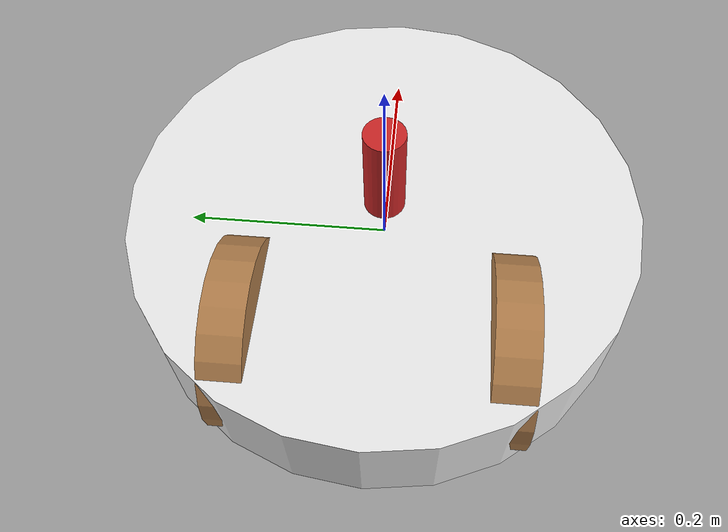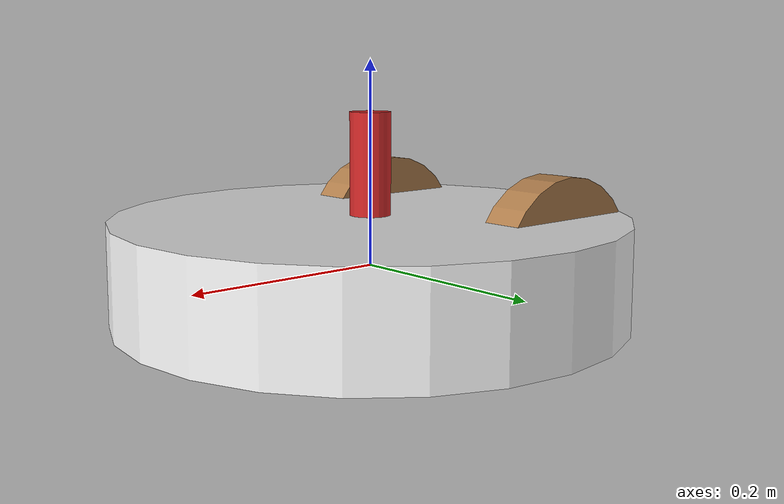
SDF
<?xml version='1.0'?>
<sdf version='1.7'>
    <model name='logger1'>
        <link name='logger-chassis'>
            <inertial>
                <pose>0.005952 0 -0.002381 0 -0 0</pose>
                <mass>2.1</mass>
                <inertia>
                    <ixx>0.0332188</ixx>
                    <ixy>0</ixy>
                    <ixz>0.000595238</ixz>
                    <iyy>0.0347069</iyy>
                    <iyz>0</iyz>
                    <izz>0.0640521</izz>
                </inertia>
            </inertial>
            <self_collide>0</self_collide>
            <enable_wind>0</enable_wind>
            <kinematic>0</kinematic>
            <pose>0 0 0 0 -0 0</pose>
            <visual name='logger-chassis_fixed_joint_lump__logger-caster_visual_1'>
                <pose>0.125 0 -0.05 0 -0 0</pose>
                <geometry>
                    <sphere>
                        <radius>0.04</radius>
                    </sphere>
                </geometry>
                <material>
                    <script>
                        <name>Gazebo/Grey</name>
                        <uri>file://media/materials/scripts/gazebo.material</uri>
                    </script>
                    <shader type='pixel'/>
                </material>
                <transparency>0</transparency>
                <cast_shadows>1</cast_shadows>
            </visual>
            <visual name='logger-chassis_visual'>
                <pose>0 0 0 0 -0 0</pose>
                <geometry>
                    <cylinder>
                        <length>0.1</length>
                        <radius>0.25</radius>
                    </cylinder>
                </geometry>
                <material>
                    <script>
                        <name>Gazebo/White</name>
                        <uri>file://media/materials/scripts/gazebo.material</uri>
                    </script>
                    <shader type='pixel'/>
                </material>
                <transparency>0</transparency>
                <cast_shadows>1</cast_shadows>
            </visual>
            <collision name='logger-chassis_fixed_joint_lump__logger-caster_collision_1'>
                <laser_retro>0</laser_retro>
                <max_contacts>10</max_contacts>
                <pose>0.125 0 -0.05 0 -0 0</pose>
                <geometry>
                    <sphere>
                        <radius>0.04</radius>
                    </sphere>
                </geometry>
                <surface>
                    <friction>
                        <ode>
                            <mu>0</mu>
                            <mu2>0</mu2>
                            <fdir1>0 0 0</fdir1>
                            <slip1>0</slip1>
                            <slip2>0</slip2>
                        </ode>
                        <torsional>
                            <coefficient>1</coefficient>
                            <patch_radius>0</patch_radius>
                            <surface_radius>0</surface_radius>
                            <use_patch_radius>1</use_patch_radius>
                            <ode>
                                <slip>0</slip>
                            </ode>
                        </torsional>
                    </friction>
                    <bounce>
                        <restitution_coefficient>0</restitution_coefficient>
                        <threshold>1e+06</threshold>
                    </bounce>
                    <contact>
                        <collide_without_contact>0</collide_without_contact>
                        <collide_without_contact_bitmask>1</collide_without_contact_bitmask>
                        <collide_bitmask>1</collide_bitmask>
                        <ode>
                            <soft_cfm>0</soft_cfm>
                            <soft_erp>0.2</soft_erp>
                            <kp>1e+13</kp>
                            <kd>1</kd>
                            <max_vel>0.01</max_vel>
                            <min_depth>0</min_depth>
                        </ode>
                        <bullet>
                            <split_impulse>1</split_impulse>
                            <split_impulse_penetration_threshold>-0.01</split_impulse_penetration_threshold>
                            <soft_cfm>0</soft_cfm>
                            <soft_erp>0.2</soft_erp>
                            <kp>1e+13</kp>
                            <kd>1</kd>
                        </bullet>
                    </contact>
                </surface>
            </collision>
            <collision name='logger-chassis_collision'>
                <laser_retro>0</laser_retro>
                <max_contacts>10</max_contacts>
                <pose>0 0 0 0 -0 0</pose>
                <geometry>
                    <cylinder>
                        <radius>0.25</radius>
                        <length>0.1</length>
                    </cylinder>
                </geometry>
                <surface>
                    <friction>
                        <ode>
                            <mu>0.5</mu>
                            <mu2>0.5</mu2>
                            <fdir1>0 0 0</fdir1>
                            <slip1>0</slip1>
                            <slip2>0</slip2>
                        </ode>
                        <torsional>
                            <coefficient>1</coefficient>
                            <patch_radius>0</patch_radius>
                            <surface_radius>0</surface_radius>
                            <use_patch_radius>1</use_patch_radius>
                            <ode>
                                <slip>0</slip>
                            </ode>
                        </torsional>
                    </friction>
                    <bounce>
                        <restitution_coefficient>0</restitution_coefficient>
                        <threshold>1e+06</threshold>
                    </bounce>
                    <contact>
                        <collide_without_contact>0</collide_without_contact>
                        <collide_without_contact_bitmask>1</collide_without_contact_bitmask>
                        <collide_bitmask>1</collide_bitmask>
                        <ode>
                            <soft_cfm>0</soft_cfm>
                            <soft_erp>0.2</soft_erp>
                            <kp>1e+13</kp>
                            <kd>1</kd>
                            <max_vel>0.01</max_vel>
                            <min_depth>0</min_depth>
                        </ode>
                        <bullet>
                            <split_impulse>1</split_impulse>
                            <split_impulse_penetration_threshold>-0.01</split_impulse_penetration_threshold>
                            <soft_cfm>0</soft_cfm>
                            <soft_erp>0.2</soft_erp>
                            <kp>1e+13</kp>
                            <kd>1</kd>
                        </bullet>
                    </contact>
                </surface>
            </collision>
        </link>
        <link name='logger-hat'>
            <pose>-0 0 0.1 0 -0 0</pose>
            <inertial>
                <pose>0 0 0.04 0 -0 0</pose>
                <mass>0.5</mass>
                <inertia>
                    <ixx>0.000466667</ixx>
                    <ixy>0</ixy>
                    <ixz>0</ixz>
                    <iyy>0.000466667</iyy>
                    <iyz>0</iyz>
                    <izz>0.0001</izz>
                </inertia>
            </inertial>
            <self_collide>0</self_collide>
            <enable_wind>0</enable_wind>
            <kinematic>0</kinematic>
            <visual name='logger-hat_visual'>
                <pose>0 0 0 0 -0 0</pose>
                <geometry>
                    <cylinder>
                        <length>0.1</length>
                        <radius>0.02</radius>
                    </cylinder>
                </geometry>
                <material>
                    <script>
                        <name>Gazebo/Red</name>
                        <uri>file://media/materials/scripts/gazebo.material</uri>
                    </script>
                    <shader type='pixel'/>
                </material>
                <transparency>0</transparency>
                <cast_shadows>1</cast_shadows>
            </visual>
            <collision name='logger-hat_collision'>
                <laser_retro>0</laser_retro>
                <max_contacts>10</max_contacts>
                <pose>0 0 0 0 -0 0</pose>
                <geometry>
                    <cylinder>
                        <radius>0.02</radius>
                        <length>0.1</length>
                    </cylinder>
                </geometry>
                <surface>
                    <friction>
                        <ode>
                            <mu>0</mu>
                            <mu2>0</mu2>
                            <fdir1>0 0 0</fdir1>
                            <slip1>0</slip1>
                            <slip2>0</slip2>
                        </ode>
                        <torsional>
                            <coefficient>1</coefficient>
                            <patch_radius>0</patch_radius>
                            <surface_radius>0</surface_radius>
                            <use_patch_radius>1</use_patch_radius>
                            <ode>
                                <slip>0</slip>
                            </ode>
                        </torsional>
                    </friction>
                    <bounce>
                        <restitution_coefficient>0</restitution_coefficient>
                        <threshold>1e+06</threshold>
                    </bounce>
                    <contact>
                        <collide_without_contact>0</collide_without_contact>
                        <collide_without_contact_bitmask>1</collide_without_contact_bitmask>
                        <collide_bitmask>1</collide_bitmask>
                        <ode>
                            <soft_cfm>0</soft_cfm>
                            <soft_erp>0.2</soft_erp>
                            <kp>1e+13</kp>
                            <kd>1</kd>
                            <max_vel>0.01</max_vel>
                            <min_depth>0</min_depth>
                        </ode>
                        <bullet>
                            <split_impulse>1</split_impulse>
                            <split_impulse_penetration_threshold>-0.01</split_impulse_penetration_threshold>
                            <soft_cfm>0</soft_cfm>
                            <soft_erp>0.2</soft_erp>
                            <kp>1e+13</kp>
                            <kd>1</kd>
                        </bullet>
                    </contact>
                </surface>
            </collision>
        </link>
        <link name='logger-left_wheel'>
            <pose>-0.125 -0.125 0 0 -0 0</pose>
            <inertial>
                <pose>0 0 0 1.5708 -0 0</pose>
                <mass>0.5</mass>
                <inertia>
                    <ixx>0.00107917</ixx>
                    <ixy>0</ixy>
                    <ixz>0</ixz>
                    <iyy>0.00107917</iyy>
                    <iyz>0</iyz>
                    <izz>0.002025</izz>
                </inertia>
            </inertial>
            <self_collide>0</self_collide>
            <enable_wind>0</enable_wind>
            <kinematic>0</kinematic>
            <visual name='logger-left_wheel_visual'>
                <pose>0 0 0 1.5708 -0 0</pose>
                <geometry>
                    <cylinder>
                        <length>0.04</length>
                        <radius>0.09</radius>
                    </cylinder>
                </geometry>
                <material>
                    <script>
                        <name>Gazebo/Wood</name>
                        <uri>file://media/materials/scripts/gazebo.material</uri>
                    </script>
                    <shader type='pixel'/>
                </material>
                <transparency>0</transparency>
                <cast_shadows>1</cast_shadows>
            </visual>
            <collision name='logger-left_wheel_collision'>
                <laser_retro>0</laser_retro>
                <max_contacts>10</max_contacts>
                <pose>0 0 0 1.5708 -0 0</pose>
                <geometry>
                    <cylinder>
                        <radius>0.09</radius>
                        <length>0.04</length>
                    </cylinder>
                </geometry>
                <surface>
                    <friction>
                        <ode>
                            <mu>0.99</mu>
                            <mu2>0.99</mu2>
                            <fdir1>0 0 0</fdir1>
                            <slip1>0</slip1>
                            <slip2>0</slip2>
                        </ode>
                        <torsional>
                            <coefficient>1</coefficient>
                            <patch_radius>0</patch_radius>
                            <surface_radius>0</surface_radius>
                            <use_patch_radius>1</use_patch_radius>
                            <ode>
                                <slip>0</slip>
                            </ode>
                        </torsional>
                    </friction>
                    <bounce>
                        <restitution_coefficient>0</restitution_coefficient>
                        <threshold>1e+06</threshold>
                    </bounce>
                    <contact>
                        <collide_without_contact>0</collide_without_contact>
                        <collide_without_contact_bitmask>1</collide_without_contact_bitmask>
                        <collide_bitmask>1</collide_bitmask>
                        <ode>
                            <soft_cfm>0</soft_cfm>
                            <soft_erp>0.2</soft_erp>
                            <kp>1e+13</kp>
                            <kd>1</kd>
                            <max_vel>0.01</max_vel>
                            <min_depth>0</min_depth>
                        </ode>
                        <bullet>
                            <split_impulse>1</split_impulse>
                            <split_impulse_penetration_threshold>-0.01</split_impulse_penetration_threshold>
                            <soft_cfm>0</soft_cfm>
                            <soft_erp>0.2</soft_erp>
                            <kp>1e+13</kp>
                            <kd>1</kd>
                        </bullet>
                    </contact>
                </surface>
            </collision>
        </link>
        <link name='logger-right_wheel'>
            <pose>-0.125 0.125 -0 0 -0 0</pose>
            <inertial>
                <pose>0 0 0 1.5708 -0 0</pose>
                <mass>0.5</mass>
                <inertia>
                    <ixx>0.00107917</ixx>
                    <ixy>0</ixy>
                    <ixz>0</ixz>
                    <iyy>0.00107917</iyy>
                    <iyz>0</iyz>
                    <izz>0.002025</izz>
                </inertia>
            </inertial>
            <self_collide>0</self_collide>
            <enable_wind>0</enable_wind>
            <kinematic>0</kinematic>
            <visual name='logger-right_wheel_visual'>
                <pose>0 0 0 1.5708 -0 0</pose>
                <geometry>
                    <cylinder>
                        <length>0.04</length>
                        <radius>0.09</radius>
                    </cylinder>
                </geometry>
                <material>
                    <script>
                        <name>Gazebo/Wood</name>
                        <uri>file://media/materials/scripts/gazebo.material</uri>
                    </script>
                    <shader type='pixel'/>
                </material>
                <transparency>0</transparency>
                <cast_shadows>1</cast_shadows>
            </visual>
            <collision name='logger-right_wheel_collision'>
                <laser_retro>0</laser_retro>
                <max_contacts>10</max_contacts>
                <pose>0 0 0 1.5708 -0 0</pose>
                <geometry>
                    <cylinder>
                        <radius>0.09</radius>
                        <length>0.04</length>
                    </cylinder>
                </geometry>
                <surface>
                    <friction>
                        <ode>
                            <mu>0.99</mu>
                            <mu2>0.99</mu2>
                            <fdir1>0 0 0</fdir1>
                            <slip1>0</slip1>
                            <slip2>0</slip2>
                        </ode>
                        <torsional>
                            <coefficient>1</coefficient>
                            <patch_radius>0</patch_radius>
                            <surface_radius>0</surface_radius>
                            <use_patch_radius>1</use_patch_radius>
                            <ode>
                                <slip>0</slip>
                            </ode>
                        </torsional>
                    </friction>
                    <bounce>
                        <restitution_coefficient>0</restitution_coefficient>
                        <threshold>1e+06</threshold>
                    </bounce>
                    <contact>
                        <collide_without_contact>0</collide_without_contact>
                        <collide_without_contact_bitmask>1</collide_without_contact_bitmask>
                        <collide_bitmask>1</collide_bitmask>
                        <ode>
                            <soft_cfm>0</soft_cfm>
                            <soft_erp>0.2</soft_erp>
                            <kp>1e+13</kp>
                            <kd>1</kd>
                            <max_vel>0.01</max_vel>
                            <min_depth>0</min_depth>
                        </ode>
                        <bullet>
                            <split_impulse>1</split_impulse>
                            <split_impulse_penetration_threshold>-0.01</split_impulse_penetration_threshold>
                            <soft_cfm>0</soft_cfm>
                            <soft_erp>0.2</soft_erp>
                            <kp>1e+13</kp>
                            <kd>1</kd>
                        </bullet>
                    </contact>
                </surface>
            </collision>
        </link>
        <joint name='logger-chassis2hat' type='revolute'>
            <parent>logger-chassis</parent>
            <child>logger-hat</child>
            <pose>0 0 0 0 -0 0</pose>
            <axis>
                <xyz>0 0 1</xyz>
                <limit>
                    <lower>-1e+16</lower>
                    <upper>1e+16</upper>
                    <effort>-1</effort>
                    <velocity>-1</velocity>
                </limit>
                <dynamics>
                    <spring_reference>0</spring_reference>
                    <spring_stiffness>0</spring_stiffness>
                    <damping>0</damping>
                    <friction>0</friction>
                </dynamics>
            </axis>
            <physics>
                <ode>
                    <limit>
                        <cfm>0</cfm>
                        <erp>0.2</erp>
                    </limit>
                    <suspension>
                        <cfm>0</cfm>
                        <erp>0.2</erp>
                    </suspension>
                </ode>
            </physics>
        </joint>
        <joint name='logger-chassis2left_wheel' type='revolute'>
            <parent>logger-chassis</parent>
            <child>logger-left_wheel</child>
            <pose>0 0 0 0 -0 0</pose>
            <axis>
                <xyz>0 1 0</xyz>
                <limit>
                    <lower>-1e+16</lower>
                    <upper>1e+16</upper>
                    <effort>-1</effort>
                    <velocity>-1</velocity>
                </limit>
                <dynamics>
                    <spring_reference>0</spring_reference>
                    <spring_stiffness>0</spring_stiffness>
                    <damping>0</damping>
                    <friction>0</friction>
                </dynamics>
            </axis>
            <physics>
                <ode>
                    <limit>
                        <cfm>0</cfm>
                        <erp>0.2</erp>
                    </limit>
                    <suspension>
                        <cfm>0</cfm>
                        <erp>0.2</erp>
                    </suspension>
                </ode>
            </physics>
        </joint>
        <joint name='logger-chassis2right_wheel' type='revolute'>
            <parent>logger-chassis</parent>
            <child>logger-right_wheel</child>
            <pose>0 0 0 0 -0 0</pose>
            <axis>
                <xyz>0 1 0</xyz>
                <limit>
                    <lower>-1e+16</lower>
                    <upper>1e+16</upper>
                    <effort>-1</effort>
                    <velocity>-1</velocity>
                </limit>
                <dynamics>
                    <spring_reference>0</spring_reference>
                    <spring_stiffness>0</spring_stiffness>
                    <damping>0</damping>
                    <friction>0</friction>
                </dynamics>
            </axis>
            <physics>
                <ode>
                    <limit>
                        <cfm>0</cfm>
                        <erp>0.2</erp>
                    </limit>
                    <suspension>
                        <cfm>0</cfm>
                        <erp>0.2</erp>
                    </suspension>
                </ode>
            </physics>
        </joint>
        <static>0</static>
        <allow_auto_disable>1</allow_auto_disable>
        <plugin name='differential_drive_controller' filename='libgazebo_ros_diff_drive.so'>
            <legacyMode>0</legacyMode>
            <alwaysOn>1</alwaysOn>
            <updateRate>100</updateRate>
            <leftJoint>logger-chassis2left_wheel</leftJoint>
            <rightJoint>logger-chassis2right_wheel</rightJoint>
            <wheelSeparation>0.25</wheelSeparation>
            <wheelDiameter>0.18</wheelDiameter>
            <wheelTorque>1</wheelTorque>
            <commandTopic>ddr_1/cmd_vel</commandTopic>
            <odometryTopic>ddr_1/odom</odometryTopic>
            <odometryFrame>odom</odometryFrame>
            <robotBaseFrame>logger-chassis</robotBaseFrame>
            <robotNamespace>/</robotNamespace>
        </plugin>
    </model>
</sdf>
